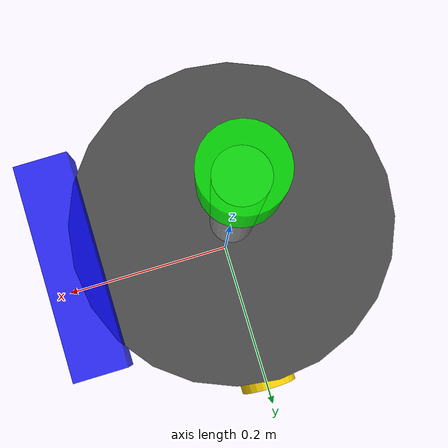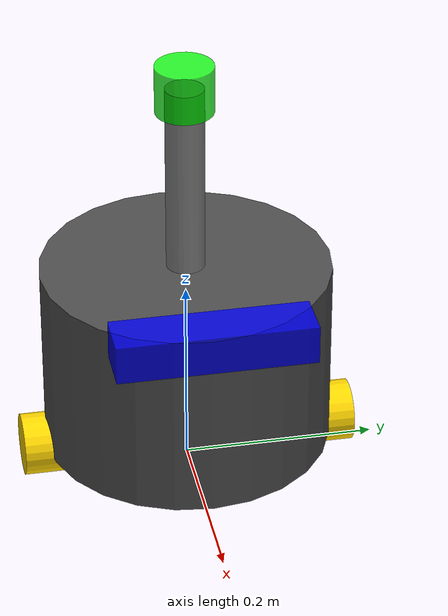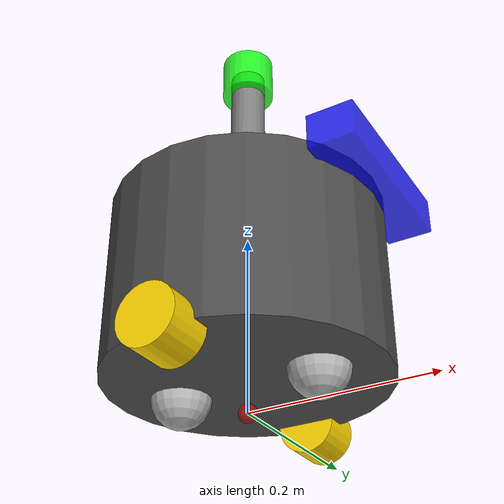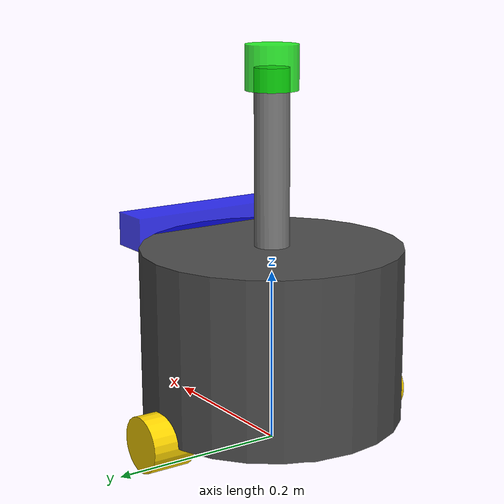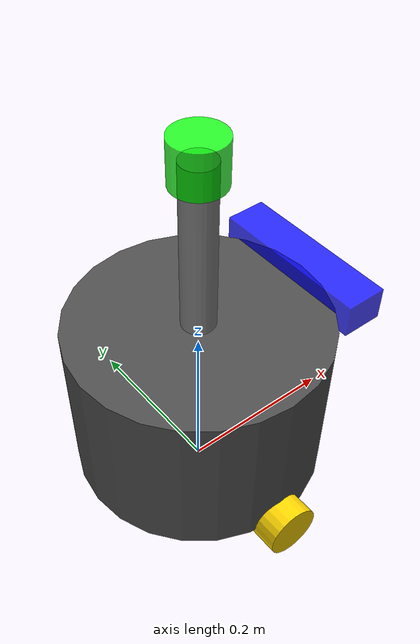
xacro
<?xml version="1.0"?>
<robot name="bzz002" xmlns:xacro="http://www.ros.org/wiki/xacro">

  <xacro:property name="support_radius" value="0.02" />
  <xacro:property name="support_height" value="0.20" />

  <xacro:include filename="$(find bzzrobot_description)/urdf/bzz2robot/base.urdf.xacro" />

  <xacro:include filename="$(find bzzrobot_description)/urdf/bzz2robot/sensor/imu.urdf.xacro" />
  <xacro:include filename="$(find bzzrobot_description)/urdf/bzz2robot/sensor/camera.urdf.xacro" />
  <xacro:include filename="$(find bzzrobot_description)/urdf/bzz2robot/sensor/laser.urdf.xacro" />

  <xacro:include filename="$(find bzzrobot_description)/urdf/bzz2robot/actuator/wheel.urdf.xacro" />

  <xacro:include filename="$(find bzzrobot_description)/urdf/bzz2robot/actuator/caster.urdf.xacro" />

  <xacro:include filename="$(find bzzrobot_description)/urdf/bzz2robot/plugins/gazebo_sensor_plugin.xacro" />
  <xacro:include filename="$(find bzzrobot_description)/urdf/bzz2robot/bzzbot.ros2_control.xacro" />

  <link name="camera_link_optical" />
  <joint name="camera_joint_optical" type="fixed">
    <parent link="camera_link" />
    <child link="camera_link_optical" />
    <origin xyz="0 0 0" rpy="-1.5708 0 -1.5708" />
  </joint>

  <!-- 支持链接link -->
  <link name="support_link">
    <!-- 支持链接可视化体 -->
    <visual>
      <origin xyz="0 0 0" rpy="0 0 0" />
      <geometry>
        <cylinder radius="${support_radius}" length="${support_height}" />
      </geometry>
      <material name="support_material">
        <color rgba="0.5 0.5 0.5 0.9" />
      </material>
    </visual>
    <!-- 支持链接碰撞碰撞体 -->
    <collision>
      <origin xyz="0 0 0" rpy="0 0 0" />
      <geometry>
        <cylinder radius="${support_radius}" length="${support_height}" />
      </geometry>
    </collision>
    <!-- 支持链接惯性体 -->
    <inertial>
      <origin xyz="0 0 0" rpy="0 0 0" />
      <mass value="0.5" />
      <inertia ixx="0.0001" ixy="0" ixz="0" iyy="0.0001" iyz="0" izz="0.00005" />
    </inertial>
  </link>

  <joint name="support_joint" type="fixed">
    <parent link="base_link" />
    <child link="support_link" />
    <origin xyz="0 0 0.2" rpy="0 0 0" />
  </joint>

  <gazebo reference="support_link">
    <material>Gazebo/DarkGrey</material>
  </gazebo>

  <xacro:imu_sensor parent="base_link" link_name="imu_link" joint_name="imu_joint">
    <origin xyz=" 0 0 0.05" rpy="0 0 0" />
  </xacro:imu_sensor>

  <xacro:camera_sensor parent="base_link" link_name="camera_link" joint_name="camera_joint">
    <origin xyz="0.15 0 0.10" rpy="0 0 0" />
  </xacro:camera_sensor>

  <xacro:laser_sensor parent="support_link" link_name="laser_link" joint_name="laser_joint">
    <origin xyz="0 0 ${support_height / 2}" rpy="0 0 0" />
  </xacro:laser_sensor>

  <xacro:wheel_actuator parent="base_link" link_name="left_wheel" joint_name="left_wheel_joint">
    <origin xyz="0 0.15 -0.1" rpy="0 0 0" />
  </xacro:wheel_actuator>

  <xacro:wheel_actuator parent="base_link" link_name="right_wheel" joint_name="right_wheel_joint">
    <origin xyz="0 -0.15 -0.1" rpy="0 0 0" />
  </xacro:wheel_actuator>

  <xacro:caster_wheel parent="base_link" link_name="front_caster" joint_name="front_caster_joint">
    <origin xyz="0.08 0 -0.1" rpy="0 0 0" />
  </xacro:caster_wheel>

  <xacro:caster_wheel parent="base_link" link_name="back_caster" joint_name="back_caster_joint">
    <origin xyz="-0.08 0 -0.1" rpy="0 0 0" />
  </xacro:caster_wheel>

  <!-- 传感器插件 -->
  <xacro:laser_plugin link_name="laser_link" />
  <xacro:imu_plugin link_name="imu_link" />
  <xacro:depth_camera_plugin link_name="camera_link" />

  <!-- 关节状态发布插件：将所有关节状态发布到 /joint_states -->
  <!-- 供 robot_state_publisher 使用以计算 TF 变换 -->
  <!-- 注意：caster关节是fixed类型，Gazebo中不存在continuous关节，所以只发布轮子关节 -->

  <!-- ros2_control 插件 -->
  <!-- 调用 bzzbot_ros2_control_plugin 宏，加载 ros2_control 硬件接口配置和 Gazebo 插件 -->

  <xacro:bzzbot_ros2_control_plugin />

</robot>

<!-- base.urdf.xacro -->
<robot xmlns:xacro="http://www.ros.org/wiki/xacro">

  <xacro:property name="base_radius" value="0.15" />
  <xacro:property name="base_length" value="0.20" />

  <link name="base_link">
    <!-- 基础链接可视化体 -->
    <visual>
      <origin xyz="0 0 0" rpy="0 0 0" />
      <geometry>
        <cylinder radius="${base_radius}" length="${base_length}" />
      </geometry>
      <material name="base_material">
        <color rgba="0.3 0.3 0.3 0.9" />
      </material>
    </visual>

    <!-- 基础链接碰撞碰撞体 -->
    <collision>
      <origin xyz="0 0 0" rpy="0 0 0" />
      <geometry>
        <cylinder radius="${base_radius}" length="${base_length}" />
      </geometry>
    </collision>
    <!-- 基础链接惯性体 -->
    <inertial>
        <origin xyz="0 0 0" rpy="0 0 0" />
        <mass value="5.0" />
        <inertia ixx="0.0517" ixy="0" ixz="0" iyy="0.0517" iyz="0" izz="0.0562" />
      </inertial>
  </link>

  <link name="base_footprint">
    <visual>
      <origin xyz="0 0 0" rpy="0 0 0" />
      <geometry>
        <sphere radius="0.01" />
      </geometry>
      <material name="base_footprint_material">
        <color rgba="1.0 0.0 0.0 0.5" />
      </material>
    </visual>
  </link>

  <joint name="base_footprint_joint" type="fixed">
    <parent link="base_footprint" />
    <child link="base_link" />
    <origin xyz="0 0 ${base_length / 2+0.032-0.001}" rpy="0 0 0" />
  </joint>

</robot>

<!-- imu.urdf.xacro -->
<robot xmlns:xacro="http://www.ros.org/wiki/xacro">

  <xacro:macro name="imu_sensor" params="parent link_name joint_name *origin">
    <link name="${link_name}">
    <!-- imu 传感器可视化体 -->
      <visual>
        <origin xyz="0 0 0" rpy="0 0 0" />
        <geometry>
          <box size="0.02 0.02 0.02" />
        </geometry>
        <material name="imu_material">
          <color rgba="1.0 0.0 0.0 0.8" />
        </material>
      </visual>
      <!-- imu 传感器碰撞体 -->
      <collision>
        <origin xyz="0 0 0" rpy="0 0 0" />
        <geometry>
          <box size="0.02 0.02 0.02" />
        </geometry>
      </collision>
      <!-- imu 传感器惯性体 -->
      <inertial>
        <origin xyz="0 0 0" rpy="0 0 0" />
        <mass value="0.01" />
        <inertia ixx="6.67e-8" ixy="0" ixz="0" iyy="6.67e-8" iyz="0" izz="6.67e-8" />
      </inertial>
    </link>
    <!-- imu 传感器关节 -->
    <joint name="${joint_name}" type="fixed">
      <parent link="${parent}" />
      <child link="${link_name}" />
      <xacro:insert_block name="origin" />
    </joint>
  </xacro:macro>

</robot>

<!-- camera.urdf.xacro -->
<robot xmlns:xacro="http://www.ros.org/wiki/xacro">

  <xacro:macro name="camera_sensor" params="parent link_name joint_name *origin">
    <link name="${link_name}">
      <visual>
        <origin xyz="0 0 0" rpy="0 0 0" />
        <geometry>
        <!-- 参数顺序：x长、y宽、z高 -->
          <box size="0.05 0.2 0.04" />
        </geometry>
        <material name="camera_material">
          <color rgba="0.0 0.0 1.0 0.8" />
        </material>
      </visual>
      <!-- 相机传感器碰撞碰撞体 -->
      <collision>
       <origin xyz="0 0 0" rpy="0 0 0" />
        <geometry>
        <!-- 参数顺序：x长、y宽、z高 -->
          <box size="0.05 0.2 0.04" />
        </geometry>
        <material name="camera_material">
          <color rgba="0.0 0.0 1.0 0.8" />
        </material>
      </collision>

      <!-- 相机传感器惯性体 -->
      <inertial>
        <origin xyz="0 0 0" rpy="0 0 0" />
        <mass value="0.1" />
        <inertia ixx="3.47e-4" ixy="0" ixz="0" iyy="2.25e-4" iyz="0" izz="4.25e-4" />
      </inertial>
    </link>

    <!-- 相机传感器关节 -->
    <joint name="${joint_name}" type="fixed">
      <parent link="${parent}" />
      <child link="${link_name}" />
      <xacro:insert_block name="origin" />
    </joint>
  </xacro:macro>
</robot>

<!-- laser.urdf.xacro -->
<robot xmlns:xacro="http://www.ros.org/wiki/xacro">

    <!-- 激光传感器链接可视化体 ,碰撞体 ,惯性体 ,关节 ,origin ,parent -->
    <xacro:macro name="laser_sensor" params="parent link_name joint_name *origin">

    <link name="${link_name}">
      <visual>
        <origin xyz="0 0 0" rpy="0 0 0" />
        <geometry>
          <cylinder radius="0.03" length="0.05" />
        </geometry>
        <material name="laser_material">
          <color rgba="0.0 1.0 0.0 0.8" />
        </material>
      </visual>

      <collision>
        <origin xyz="0 0 0" rpy="0 0 0" />
        <geometry>
          <cylinder radius="0.03" length="0.05" />
        </geometry>
      </collision>
      <inertial>
        <origin xyz="0 0 0" rpy="0 0 0" />
        <mass value="0.1" />
        <inertia ixx="2.67e-5" ixy="0" ixz="0" iyy="2.67e-5" iyz="0" izz="4.50e-5" />
      </inertial>
    </link>

    <joint name="${joint_name}" type="fixed">
      <parent link="${parent}" />
      <child link="${link_name}" />
      <xacro:insert_block name="origin" />
    </joint>

    <gazebo reference="${link_name}">
      <material>Gazebo/Green</material>
    </gazebo>
  </xacro:macro>

</robot>

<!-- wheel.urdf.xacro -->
<robot xmlns:xacro="http://www.ros.org/wiki/xacro">

  <xacro:macro name="wheel_actuator" params="parent link_name joint_name *origin">

    <link name="${link_name}">
    <!-- 轮子可视化 -->
      <visual>
        <origin xyz="0 0 0" rpy="1.57079 0 0" />
        <geometry>
          <cylinder radius="0.032" length="0.05" />
        </geometry>
        <material name="${link_name}_material">
          <color rgba="1.0 0.84 0.0 0.9" />
        </material>
      </visual>
       <!-- wheel 碰撞体 -->
      <collision>
        <origin xyz="0 0 0" rpy="1.57079 0 0" />
        <geometry>
          <cylinder radius="0.032" length="0.05" />
        </geometry>
        <material name="${link_name}_material">
          <color rgba="1.0 0.84 0.0 0.9" />
        </material>
      </collision>
      <!-- wheel 惯性设置 -->
      <inertial>
        <origin xyz="0 0 0" rpy="0 0 0" />
        <mass value="0.5" />
        <inertia ixx="0.001" ixy="0" ixz="0" iyy="0.001" iyz="0" izz="0.0005" />
      </inertial>
    </link>

    <joint name="${joint_name}" type="continuous">
      <parent link="${parent}" />
      <child link="${link_name}" />
      <xacro:insert_block name="origin" />
      <!-- 定义轮子绕Y轴旋转 -->
      <axis xyz="0 1 0" />
    </joint>

    <!-- Gazebo 摩擦系数设置：防止轮子打滑 -->
    <gazebo reference="${link_name}">
      <mu1>20.0</mu1>           <!-- 静摩擦系数（沿第一个切线方向） -->
      <mu2>20.0</mu2>           <!-- 动摩擦系数（沿第二个切线方向） -->
      <kp>1000000.0</kp>       <!-- 接触刚度，越大越硬 -->
      <kd>1.0</kd>             <!-- 接触阻尼 -->
      <minDepth>0.001</minDepth>
      <material>Gazebo/Yellow</material>
    </gazebo>

  </xacro:macro>

</robot>

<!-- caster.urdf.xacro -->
<robot xmlns:xacro="http://www.ros.org/wiki/xacro">

  <xacro:macro name="caster_wheel" params="parent link_name joint_name *origin">

    <link name="${link_name}">
      <visual>
        <origin xyz="0 0 0" rpy="0 0 0" />
        <geometry>
          <sphere radius="0.032" />
        </geometry>
        <material name="${link_name}_material">
          <color rgba="0.7 0.7 0.7 1" />
        </material>
      </visual>
      <collision>
        <origin xyz="0 0 0" rpy="0 0 0" />
        <geometry>
          <sphere radius="0.032" />
        </geometry>
      </collision>

      <inertial>
        <origin xyz="0 0 0" rpy="0 0 0" />
        <mass value="0.1" />
        <inertia ixx="5.12e-6" ixy="0" ixz="0" iyy="5.12e-6" iyz="0" izz="5.12e-6" />
      </inertial>
    </link>

    <joint name="${joint_name}" type="fixed">
      <parent link="${parent}" />
      <child link="${link_name}" />
      <xacro:insert_block name="origin" />
    </joint>

    <!-- Gazebo 万向轮摩擦设置：球体需要低摩擦才能顺滑滚动 -->
    <gazebo reference="${link_name}">
      <mu1>0.05</mu1>            <!-- 静摩擦系数，万向球需较小值 -->
      <mu2>0.05</mu2>            <!-- 动摩擦系数 -->
      <kp>1000000.0</kp>         <!-- 接触刚度 -->
      <kd>1.0</kd>               <!-- 接触阻尼 -->
      <minDepth>0.001</minDepth> <!-- 最小穿透深度 -->
      <material>Gazebo/Grey</material>
    </gazebo>

  </xacro:macro>

</robot>
